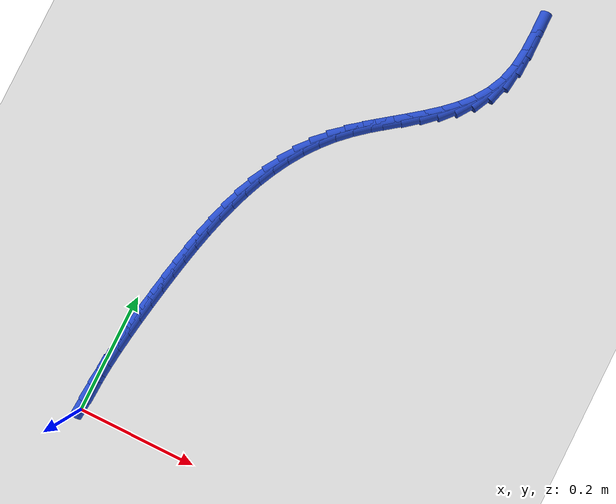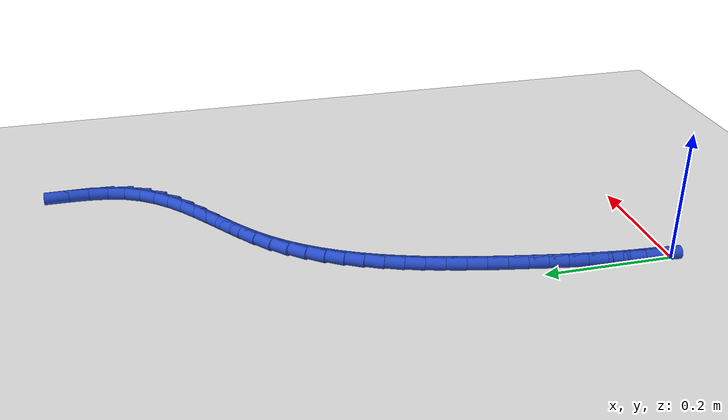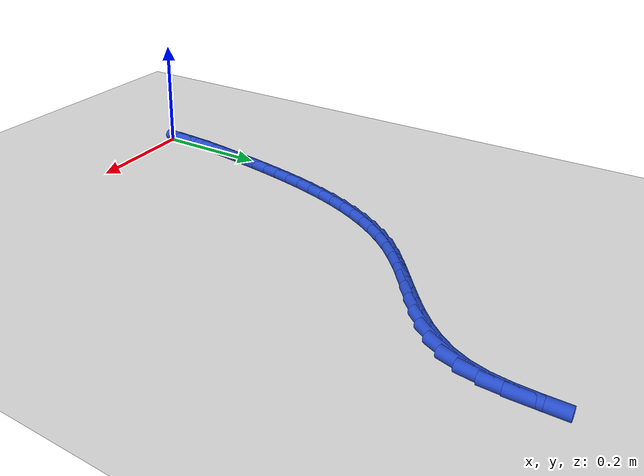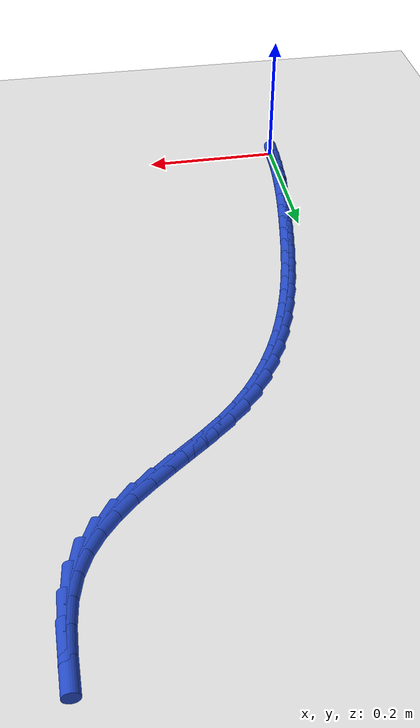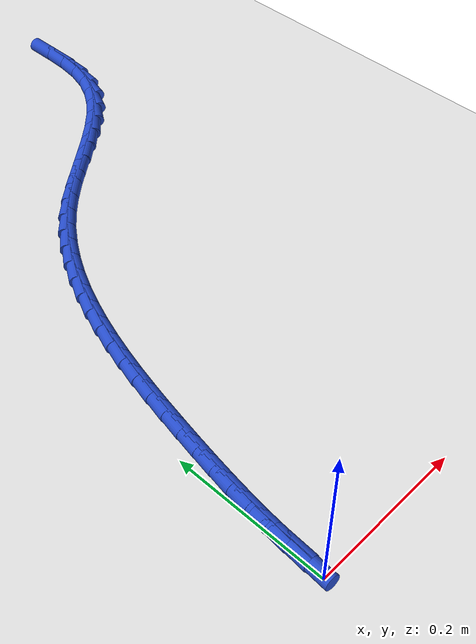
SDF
<sdf version="1.6">
 <world name="default">
  <model name="ground_plane">
   <static>1</static>
   <link name="link">
    <collision name="collision">
     <geometry><plane><normal>0 0 1</normal><size>100 100</size></plane></geometry>
     <surface><friction><ode><mu>100</mu><mu2>50</mu2></ode></friction></surface>
    </collision>
    <visual name="visual">
     <cast_shadows>0</cast_shadows>
     <geometry><plane><normal>0 0 1</normal><size>100 100</size></plane></geometry>
     <material>
      <script><uri>file://media/materials/scripts/gazebo.material</uri><name>Gazebo/WhiteGlow</name></script>
     </material>
    </visual>
   </link>
  </model>
  <model name="line">
   <link name="link_2">
    <pose>0.00231621827940182 0.05634575431666636 0.01 0 1.57 1.4844393712283537</pose>
    <collision name="collision">
     <geometry><cylinder><radius>0.01</radius><length>0.08</length></cylinder></geometry>
    </collision>
    <visual name="visual">
     <material>
      <script><name>Gazebo/Blue</name><uri>file://media/materials/scripts/gazebo.material</uri></script>
     </material>
     <geometry><cylinder><radius>0.01</radius><length>0.08</length></cylinder></geometry>
    </visual>
   </link>
   <link name="link_3">
    <pose>0.004763729049343017 0.08461705688505244 0.01 0 1.57 1.4592352928734107</pose>
    <collision name="collision">
     <geometry><cylinder><radius>0.01</radius><length>0.08</length></cylinder></geometry>
    </collision>
    <visual name="visual">
     <material>
      <script><name>Gazebo/Blue</name><uri>file://media/materials/scripts/gazebo.material</uri></script>
     </material>
     <geometry><cylinder><radius>0.01</radius><length>0.08</length></cylinder></geometry>
    </visual>
   </link>
   <link name="link_4">
    <pose>0.007940456399701545 0.11297406696328394 0.01 0 1.57 1.4377689135698544</pose>
    <collision name="collision">
     <geometry><cylinder><radius>0.01</radius><length>0.08</length></cylinder></geometry>
    </collision>
    <visual name="visual">
     <material>
      <script><name>Gazebo/Blue</name><uri>file://media/materials/scripts/gazebo.material</uri></script>
     </material>
     <geometry><cylinder><radius>0.01</radius><length>0.08</length></cylinder></geometry>
    </visual>
   </link>
   <link name="link_5">
    <pose>0.011748611950670269 0.14143185247871848 0.01 0 1.57 1.4199987259306481</pose>
    <collision name="collision">
     <geometry><cylinder><radius>0.01</radius><length>0.08</length></cylinder></geometry>
    </collision>
    <visual name="visual">
     <material>
      <script><name>Gazebo/Blue</name><uri>file://media/materials/scripts/gazebo.material</uri></script>
     </material>
     <geometry><cylinder><radius>0.01</radius><length>0.08</length></cylinder></geometry>
    </visual>
   </link>
   <link name="link_6">
    <pose>0.01609040732244205 0.17000548135871377 0.01 0 1.57 1.4058660574432529</pose>
    <collision name="collision">
     <geometry><cylinder><radius>0.01</radius><length>0.08</length></cylinder></geometry>
    </collision>
    <visual name="visual">
     <material>
      <script><name>Gazebo/Blue</name><uri>file://media/materials/scripts/gazebo.material</uri></script>
     </material>
     <geometry><cylinder><radius>0.01</radius><length>0.08</length></cylinder></geometry>
    </visual>
   </link>
   <link name="link_7">
    <pose>0.02086805413520973 0.19871002153062717 0.01 0 1.57 1.3952951103471207</pose>
    <collision name="collision">
     <geometry><cylinder><radius>0.01</radius><length>0.08</length></cylinder></geometry>
    </collision>
    <visual name="visual">
     <material>
      <script><name>Gazebo/Blue</name><uri>file://media/materials/scripts/gazebo.material</uri></script>
     </material>
     <geometry><cylinder><radius>0.01</radius><length>0.08</length></cylinder></geometry>
    </visual>
   </link>
   <link name="link_8">
    <pose>0.02598396773254256 0.22756042493904283 0.01 0 1.57 1.3859469270723759</pose>
    <collision name="collision">
     <geometry><cylinder><radius>0.01</radius><length>0.08</length></cylinder></geometry>
    </collision>
    <visual name="visual">
     <material>
      <script><name>Gazebo/Blue</name><uri>file://media/materials/scripts/gazebo.material</uri></script>
     </material>
     <geometry><cylinder><radius>0.01</radius><length>0.08</length></cylinder></geometry>
    </visual>
   </link>
   <link name="link_9">
    <pose>0.03140205467062354 0.2565366356589112 0.01 0 1.57 1.3723373939159056</pose>
    <collision name="collision">
     <geometry><cylinder><radius>0.01</radius><length>0.08</length></cylinder></geometry>
    </collision>
    <visual name="visual">
     <material>
      <script><name>Gazebo/Blue</name><uri>file://media/materials/scripts/gazebo.material</uri></script>
     </material>
     <geometry><cylinder><radius>0.01</radius><length>0.08</length></cylinder></geometry>
    </visual>
   </link>
   <link name="link_10">
    <pose>0.03723372754716174 0.2855346203633341 0.01 0 1.57 1.353599764062397</pose>
    <collision name="collision">
     <geometry><cylinder><radius>0.01</radius><length>0.08</length></cylinder></geometry>
    </collision>
    <visual name="visual">
     <material>
      <script><name>Gazebo/Blue</name><uri>file://media/materials/scripts/gazebo.material</uri></script>
     </material>
     <geometry><cylinder><radius>0.01</radius><length>0.08</length></cylinder></geometry>
    </visual>
   </link>
   <link name="link_11">
    <pose>0.043612059992815574 0.31443801377446645 0.01 0 1.57 1.3295948969485154</pose>
    <collision name="collision">
     <geometry><cylinder><radius>0.01</radius><length>0.08</length></cylinder></geometry>
    </collision>
    <visual name="visual">
     <material>
      <script><name>Gazebo/Blue</name><uri>file://media/materials/scripts/gazebo.material</uri></script>
     </material>
     <geometry><cylinder><radius>0.01</radius><length>0.08</length></cylinder></geometry>
    </visual>
   </link>
   <link name="link_12">
    <pose>0.05067012563824344 0.34313045061446323 0.01 0 1.57 1.3001220045204205</pose>
    <collision name="collision">
     <geometry><cylinder><radius>0.01</radius><length>0.08</length></cylinder></geometry>
    </collision>
    <visual name="visual">
     <material>
      <script><name>Gazebo/Blue</name><uri>file://media/materials/scripts/gazebo.material</uri></script>
     </material>
     <geometry><cylinder><radius>0.01</radius><length>0.08</length></cylinder></geometry>
    </visual>
   </link>
   <link name="link_13">
    <pose>0.05854099811410375 0.37149556560547925 0.01 0 1.57 1.264935044091737</pose>
    <collision name="collision">
     <geometry><cylinder><radius>0.01</radius><length>0.08</length></cylinder></geometry>
    </collision>
    <visual name="visual">
     <material>
      <script><name>Gazebo/Blue</name><uri>file://media/materials/scripts/gazebo.material</uri></script>
     </material>
     <geometry><cylinder><radius>0.01</radius><length>0.08</length></cylinder></geometry>
    </visual>
   </link>
   <link name="link_14">
    <pose>0.06735775105105489 0.3994169934696695 0.01 0 1.57 1.223765772698861</pose>
    <collision name="collision">
     <geometry><cylinder><radius>0.01</radius><length>0.08</length></cylinder></geometry>
    </collision>
    <visual name="visual">
     <material>
      <script><name>Gazebo/Blue</name><uri>file://media/materials/scripts/gazebo.material</uri></script>
     </material>
     <geometry><cylinder><radius>0.01</radius><length>0.08</length></cylinder></geometry>
    </visual>
   </link>
   <link name="link_15">
    <pose>0.07725345807975528 0.42677836892918897 0.01 0 1.57 1.17635642199306</pose>
    <collision name="collision">
     <geometry><cylinder><radius>0.01</radius><length>0.08</length></cylinder></geometry>
    </collision>
    <visual name="visual">
     <material>
      <script><name>Gazebo/Blue</name><uri>file://media/materials/scripts/gazebo.material</uri></script>
     </material>
     <geometry><cylinder><radius>0.01</radius><length>0.08</length></cylinder></geometry>
    </visual>
   </link>
   <link name="link_16">
    <pose>0.08836119283086336 0.45346332670619266 0.01 0 1.57 1.1225046997633035</pose>
    <collision name="collision">
     <geometry><cylinder><radius>0.01</radius><length>0.08</length></cylinder></geometry>
    </collision>
    <visual name="visual">
     <material>
      <script><name>Gazebo/Blue</name><uri>file://media/materials/scripts/gazebo.material</uri></script>
     </material>
     <geometry><cylinder><radius>0.01</radius><length>0.08</length></cylinder></geometry>
    </visual>
   </link>
   <link name="link_17">
    <pose>0.10081402893503746 0.47935550152283524 0.01 0 1.57 1.0621223965960767</pose>
    <collision name="collision">
     <geometry><cylinder><radius>0.01</radius><length>0.08</length></cylinder></geometry>
    </collision>
    <visual name="visual">
     <material>
      <script><name>Gazebo/Blue</name><uri>file://media/materials/scripts/gazebo.material</uri></script>
     </material>
     <geometry><cylinder><radius>0.01</radius><length>0.08</length></cylinder></geometry>
    </visual>
   </link>
   <link name="link_18">
    <pose>0.11474504002293606 0.5043385281012721 0.01 0 1.57 0.9953055394524062</pose>
    <collision name="collision">
     <geometry><cylinder><radius>0.01</radius><length>0.08</length></cylinder></geometry>
    </collision>
    <visual name="visual">
     <material>
      <script><name>Gazebo/Blue</name><uri>file://media/materials/scripts/gazebo.material</uri></script>
     </material>
     <geometry><cylinder><radius>0.01</radius><length>0.08</length></cylinder></geometry>
    </visual>
   </link>
   <link name="link_19">
    <pose>0.13028729972521755 0.5282960411636578 0.01 0 1.57 0.922408352016802</pose>
    <collision name="collision">
     <geometry><cylinder><radius>0.01</radius><length>0.08</length></cylinder></geometry>
    </collision>
    <visual name="visual">
     <material>
      <script><name>Gazebo/Blue</name><uri>file://media/materials/scripts/gazebo.material</uri></script>
     </material>
     <geometry><cylinder><radius>0.01</radius><length>0.08</length></cylinder></geometry>
    </visual>
   </link>
   <link name="link_20">
    <pose>0.14757388167254032 0.5511116754321475 0.01 0 1.57 0.8441059657487131</pose>
    <collision name="collision">
     <geometry><cylinder><radius>0.01</radius><length>0.08</length></cylinder></geometry>
    </collision>
    <visual name="visual">
     <material>
      <script><name>Gazebo/Blue</name><uri>file://media/materials/scripts/gazebo.material</uri></script>
     </material>
     <geometry><cylinder><radius>0.01</radius><length>0.08</length></cylinder></geometry>
    </visual>
   </link>
   <link name="link_21">
    <pose>0.1667378594955628 0.5726690656288959 0.01 0 1.57 0.762438806571426</pose>
    <collision name="collision">
     <geometry><cylinder><radius>0.01</radius><length>0.08</length></cylinder></geometry>
    </collision>
    <visual name="visual">
     <material>
      <script><name>Gazebo/Blue</name><uri>file://media/materials/scripts/gazebo.material</uri></script>
     </material>
     <geometry><cylinder><radius>0.01</radius><length>0.08</length></cylinder></geometry>
    </visual>
   </link>
   <link name="link_22">
    <pose>0.18788723665252804 0.5928689240845005 0.01 0 1.57 0.6950614117786142</pose>
    <collision name="collision">
     <geometry><cylinder><radius>0.01</radius><length>0.08</length></cylinder></geometry>
    </collision>
    <visual name="visual">
     <material>
      <script><name>Gazebo/Blue</name><uri>file://media/materials/scripts/gazebo.material</uri></script>
     </material>
     <geometry><cylinder><radius>0.01</radius><length>0.08</length></cylinder></geometry>
    </visual>
   </link>
   <link name="link_23">
    <pose>0.2107084700605852 0.6118991173880096 0.01 0 1.57 0.6545456691266348</pose>
    <collision name="collision">
     <geometry><cylinder><radius>0.01</radius><length>0.08</length></cylinder></geometry>
    </collision>
    <visual name="visual">
     <material>
      <script><name>Gazebo/Blue</name><uri>file://media/materials/scripts/gazebo.material</uri></script>
     </material>
     <geometry><cylinder><radius>0.01</radius><length>0.08</length></cylinder></geometry>
    </visual>
   </link>
   <link name="link_24">
    <pose>0.23453799647686543 0.6301859431667889 0.01 0 1.57 0.639629527414747</pose>
    <collision name="collision">
     <geometry><cylinder><radius>0.01</radius><length>0.08</length></cylinder></geometry>
    </collision>
    <visual name="visual">
     <material>
      <script><name>Gazebo/Blue</name><uri>file://media/materials/scripts/gazebo.material</uri></script>
     </material>
     <geometry><cylinder><radius>0.01</radius><length>0.08</length></cylinder></geometry>
    </visual>
   </link>
   <link name="link_25">
    <pose>0.2587016429815712 0.648162926278448 0.01 0 1.57 0.6497303249937508</pose>
    <collision name="collision">
     <geometry><cylinder><radius>0.01</radius><length>0.08</length></cylinder></geometry>
    </collision>
    <visual name="visual">
     <material>
      <script><name>Gazebo/Blue</name><uri>file://media/materials/scripts/gazebo.material</uri></script>
     </material>
     <geometry><cylinder><radius>0.01</radius><length>0.08</length></cylinder></geometry>
    </visual>
   </link>
   <link name="link_26">
    <pose>0.28252523665490514 0.6662635915805967 0.01 0 1.57 0.6856155836763922</pose>
    <collision name="collision">
     <geometry><cylinder><radius>0.01</radius><length>0.08</length></cylinder></geometry>
    </collision>
    <visual name="visual">
     <material>
      <script><name>Gazebo/Blue</name><uri>file://media/materials/scripts/gazebo.material</uri></script>
     </material>
     <geometry><cylinder><radius>0.01</radius><length>0.08</length></cylinder></geometry>
    </visual>
   </link>
   <link name="link_27">
    <pose>0.3053346045770696 0.6849214639308446 0.01 0 1.57 0.7492995422526305</pose>
    <collision name="collision">
     <geometry><cylinder><radius>0.01</radius><length>0.08</length></cylinder></geometry>
    </collision>
    <visual name="visual">
     <material>
      <script><name>Gazebo/Blue</name><uri>file://media/materials/scripts/gazebo.material</uri></script>
     </material>
     <geometry><cylinder><radius>0.01</radius><length>0.08</length></cylinder></geometry>
    </visual>
   </link>
   <link name="link_28">
    <pose>0.32645557382826734 0.7045700681868013 0.01 0 1.57 0.8434396076398463</pose>
    <collision name="collision">
     <geometry><cylinder><radius>0.01</radius><length>0.08</length></cylinder></geometry>
    </collision>
    <visual name="visual">
     <material>
      <script><name>Gazebo/Blue</name><uri>file://media/materials/scripts/gazebo.material</uri></script>
     </material>
     <geometry><cylinder><radius>0.01</radius><length>0.08</length></cylinder></geometry>
    </visual>
   </link>
   <link name="link_29">
    <pose>0.3452139714887008 0.7256429292060768 0.01 0 1.57 0.9697883097614433</pose>
    <collision name="collision">
     <geometry><cylinder><radius>0.01</radius><length>0.08</length></cylinder></geometry>
    </collision>
    <visual name="visual">
     <material>
      <script><name>Gazebo/Blue</name><uri>file://media/materials/scripts/gazebo.material</uri></script>
     </material>
     <geometry><cylinder><radius>0.01</radius><length>0.08</length></cylinder></geometry>
    </visual>
   </link>
   <link name="link_30">
    <pose>0.36093562463857254 0.7485735718462805 0.01 0 1.57 1.1263679460517388</pose>
    <collision name="collision">
     <geometry><cylinder><radius>0.01</radius><length>0.08</length></cylinder></geometry>
    </collision>
    <visual name="visual">
     <material>
      <script><name>Gazebo/Blue</name><uri>file://media/materials/scripts/gazebo.material</uri></script>
     </material>
     <geometry><cylinder><radius>0.01</radius><length>0.08</length></cylinder></geometry>
    </visual>
   </link>
   <link name="link_31">
    <pose>0.37294636035808515 0.7737955209650219 0.01 0 1.57 1.3030096611344328</pose>
    <collision name="collision">
     <geometry><cylinder><radius>0.01</radius><length>0.08</length></cylinder></geometry>
    </collision>
    <visual name="visual">
     <material>
      <script><name>Gazebo/Blue</name><uri>file://media/materials/scripts/gazebo.material</uri></script>
     </material>
     <geometry><cylinder><radius>0.01</radius><length>0.08</length></cylinder></geometry>
    </visual>
   </link>
   <link name="link_32">
    <pose>0.3806072520532231 0.8017165906903553 0.01 0 1.57 1.4518044396515537</pose>
    <collision name="collision">
     <geometry><cylinder><radius>0.01</radius><length>0.08</length></cylinder></geometry>
    </collision>
    <visual name="visual">
     <material>
      <script><name>Gazebo/Blue</name><uri>file://media/materials/scripts/gazebo.material</uri></script>
     </material>
     <geometry><cylinder><radius>0.01</radius><length>0.08</length></cylinder></geometry>
    </visual>
   </link>
   <link name="link_33">
    <pose>0.38423363486674517 0.8320485008796518 0.01 0 1.57 1.540869643582424</pose>
    <collision name="collision">
     <geometry><cylinder><radius>0.01</radius><length>0.08</length></cylinder></geometry>
    </collision>
    <visual name="visual">
     <material>
      <script><name>Gazebo/Blue</name><uri>file://media/materials/scripts/gazebo.material</uri></script>
     </material>
     <geometry><cylinder><radius>0.01</radius><length>0.08</length></cylinder></geometry>
    </visual>
   </link>
   <link name="link_34">
    <pose>0.3851824345853442 0.8637431743118724 0.01 0 1.57 -1.5608155906507495</pose>
    <collision name="collision">
     <geometry><cylinder><radius>0.01</radius><length>0.08</length></cylinder></geometry>
    </collision>
    <visual name="visual">
     <material>
      <script><name>Gazebo/Blue</name><uri>file://media/materials/scripts/gazebo.material</uri></script>
     </material>
     <geometry><cylinder><radius>0.01</radius><length>0.08</length></cylinder></geometry>
    </visual>
   </link>
   <link name="link_281">
    <pose>0.0007217535952228019 0.028150267058359095 0.01 0 1.57 1.5070375369894657</pose>
    <collision name="collision">
     <geometry><cylinder><radius>0.01</radius><length>0.08</length></cylinder></geometry>
    </collision>
    <visual name="visual">
     <material>
      <script><name>Gazebo/Blue</name><uri>file://media/materials/scripts/gazebo.material</uri></script>
     </material>
     <geometry><cylinder><radius>0.01</radius><length>0.08</length></cylinder></geometry>
    </visual>
   </link>
   <link name="link_282">
    <pose>0.0025245472837034273 0.05638716013739402 0.01 0 1.57 1.526054536588377</pose>
    <collision name="collision">
     <geometry><cylinder><radius>0.01</radius><length>0.08</length></cylinder></geometry>
    </collision>
    <visual name="visual">
     <material>
      <script><name>Gazebo/Blue</name><uri>file://media/materials/scripts/gazebo.material</uri></script>
     </material>
     <geometry><cylinder><radius>0.01</radius><length>0.08</length></cylinder></geometry>
    </visual>
   </link>
  </model>
 </world>
</sdf>
